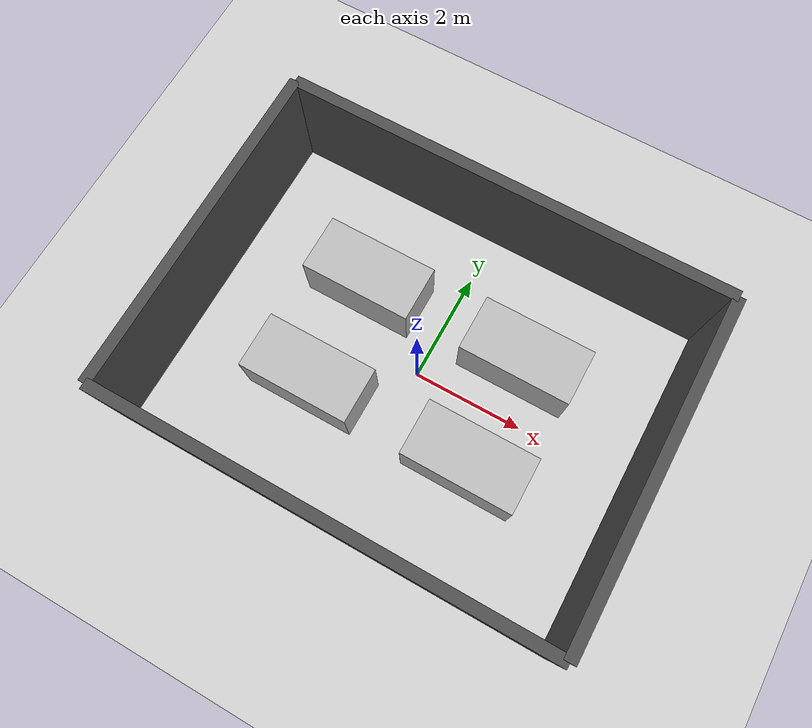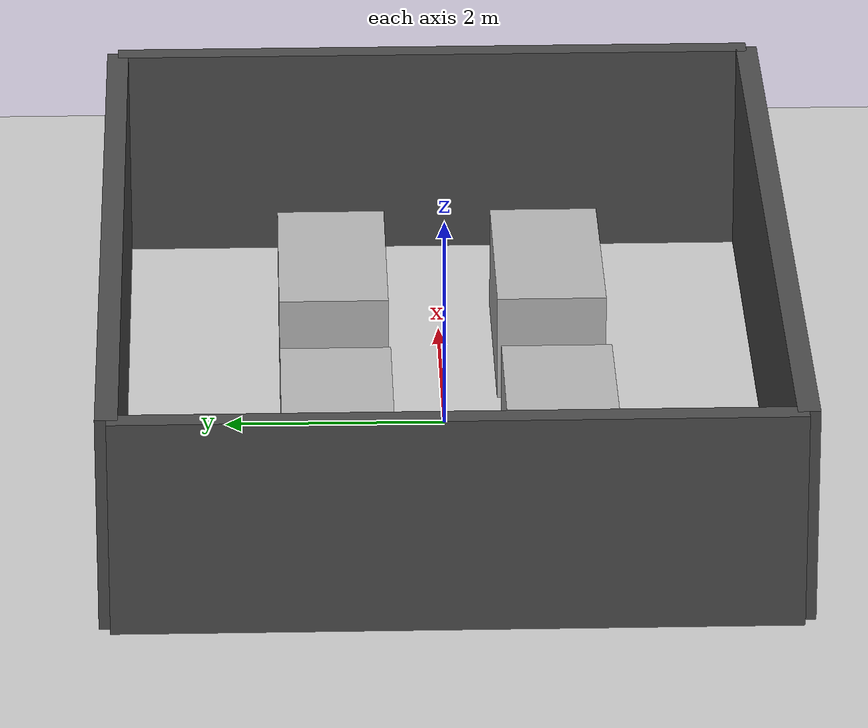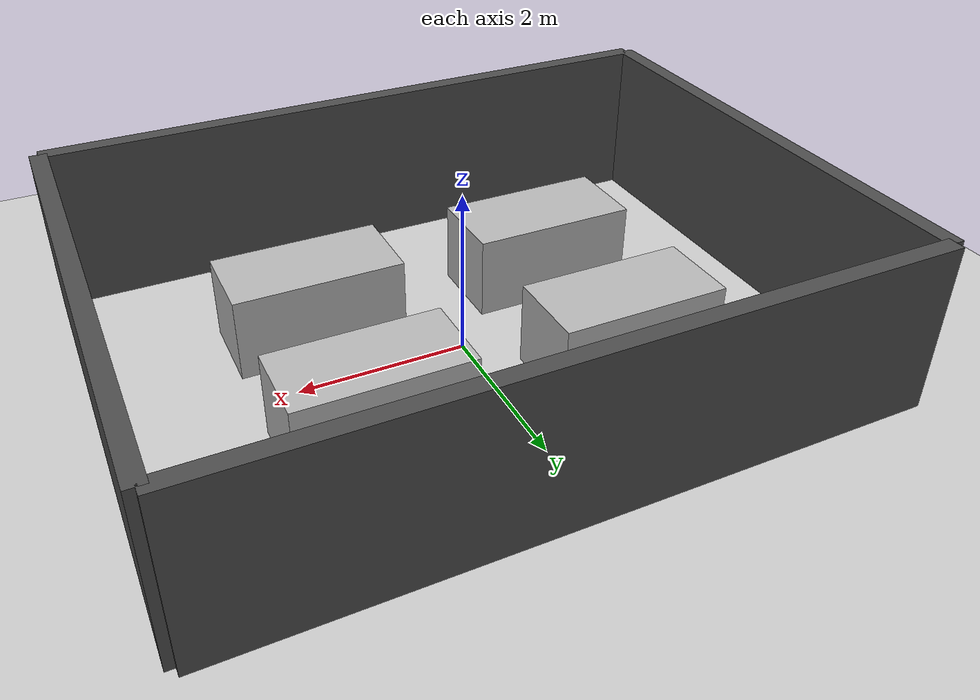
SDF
<sdf version='1.6'>
  <world name='default'>
    <!-- Light source -->
    <include>
      <uri>model://sun</uri>
    </include>

    <!-- Ground Plane -->
    <include>
      <uri>model://ground_plane</uri>
    </include>

    <!-- Wall 1 -->
    <model name='wall_1'>
      <static>true</static>
      <pose>4 0 1 0 0 0</pose> <!-- Adjusted to place the center of the wall -->
      <link name='link'>
        <collision name='collision'>
          <geometry>
            <box>
              <size>0.2 6 2</size> <!-- Thickness, Length, Height -->
            </box>
          </geometry>
        </collision>
        <visual name='visual'>
          <geometry>
            <box>
              <size>0.2 6 2</size>
            </box>
          </geometry>
          <material>
            <script>
              <uri>file://media/materials/scripts/gazebo.material</uri>
              <name>Gazebo/DarkGrey</name>
            </script>
          </material>
        </visual>
      </link>
    </model>

    <!-- Wall 2 -->
    <model name='wall_2'>
      <static>true</static>
      <pose>-4 0 1 0 0 0</pose>
      <link name='link'>
        <collision name='collision'>
          <geometry>
            <box>
              <size>0.2 6 2</size>
            </box>
          </geometry>
        </collision>
        <visual name='visual'>
          <geometry>
            <box>
              <size>0.2 6 2</size>
            </box>
          </geometry>
          <material>
            <script>
              <uri>file://media/materials/scripts/gazebo.material</uri>
              <name>Gazebo/DarkGrey</name>
            </script>
          </material>
        </visual>
      </link>
    </model>

    <!-- Wall 3 -->
    <model name='wall_3'>
      <static>true</static>
      <pose>0 3 1 0 0 1.5708</pose> <!-- Rotated 90 degrees -->
      <link name='link'>
        <collision name='collision'>
          <geometry>
            <box>
              <size>0.2 8 2</size>
            </box>
          </geometry>
        </collision>
        <visual name='visual'>
          <geometry>
            <box>
              <size>0.2 8 2</size>
            </box>
          </geometry>
          <material>
            <script>
              <uri>file://media/materials/scripts/gazebo.material</uri>
              <name>Gazebo/DarkGrey</name>
            </script>
          </material>
        </visual>
      </link>
    </model>

    <!-- Wall 4 -->
    <model name='wall_4'>
      <static>true</static>
      <pose>0 -3 1 0 0 1.5708</pose>
      <link name='link'>
        <collision name='collision'>
          <geometry>
            <box>
              <size>0.2 8 2</size>
            </box>
          </geometry>
        </collision>
        <visual name='visual'>
          <geometry>
            <box>
              <size>0.2 8 2</size>
            </box>
          </geometry>
          <material>
            <script>
              <uri>file://media/materials/scripts/gazebo.material</uri>
              <name>Gazebo/DarkGrey</name>
            </script>
          </material>
        </visual>
      </link>
    </model>

    <model name='shelf_1'>
      <static>true</static>
      <pose>1.5 1 0.5 0 0 1.5708</pose>
      <link name='link'>
        <collision name='collision'>
          <geometry>
            <box>
              <size>1 2 1</size> <!-- Length, Depth, Height -->
            </box>
          </geometry>
        </collision>
        <visual name='visual'>
          <geometry>
            <box>
              <size>1 2 1</size>
            </box>
          </geometry>
        </visual>
      </link>
    </model>

    <model name='shelf_2'>
      <static>true</static>
      <pose>1.5 -1 0.5 0 0 1.5708</pose>
      <link name='link'>
        <collision name='collision'>
          <geometry>
            <box>
              <size>1 2 1</size> <!-- Length, Depth, Height -->
            </box>
          </geometry>
        </collision>
        <visual name='visual'>
          <geometry>
            <box>
              <size>1 2 1</size>
            </box>
          </geometry>
        </visual>
      </link>
    </model>

    <model name='shelf_3'>
      <static>true</static>
      <pose>-1.5 1 0.5 0 0 1.5708</pose>
      <link name='link'>
        <collision name='collision'>
          <geometry>
            <box>
              <size>1 2 1</size> <!-- Length, Depth, Height -->
            </box>
          </geometry>
        </collision>
        <visual name='visual'>
          <geometry>
            <box>
              <size>1 2 1</size>
            </box>
          </geometry>
        </visual>
      </link>
    </model>

    <model name='shelf_4'>
      <static>true</static>
      <pose>-1.5 -1 0.5 0 0 1.5708</pose>
      <link name='link'>
        <collision name='collision'>
          <geometry>
            <box>
              <size>1 2 1</size> <!-- Length, Depth, Height -->
            </box>
          </geometry>
        </collision>
        <visual name='visual'>
          <geometry>
            <box>
              <size>1 2 1</size>
            </box>
          </geometry>
        </visual>
      </link>
    </model>

  </world>
</sdf>
